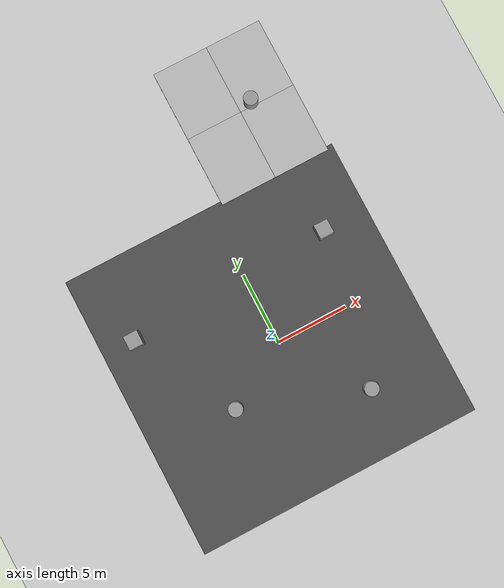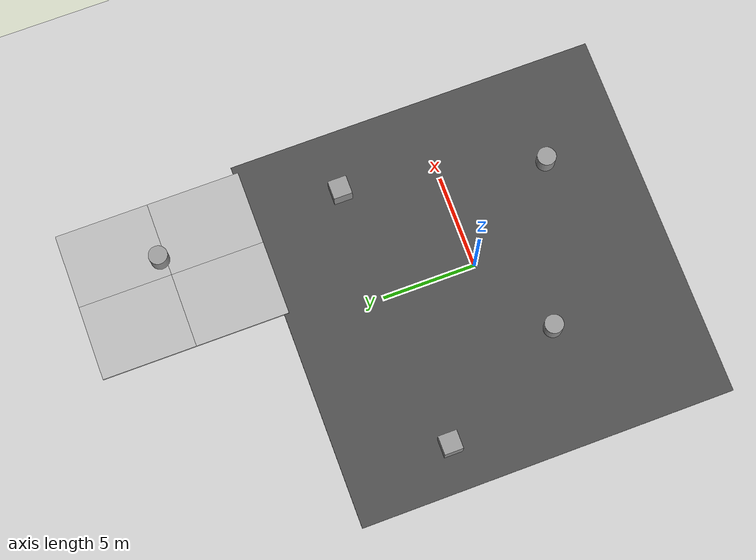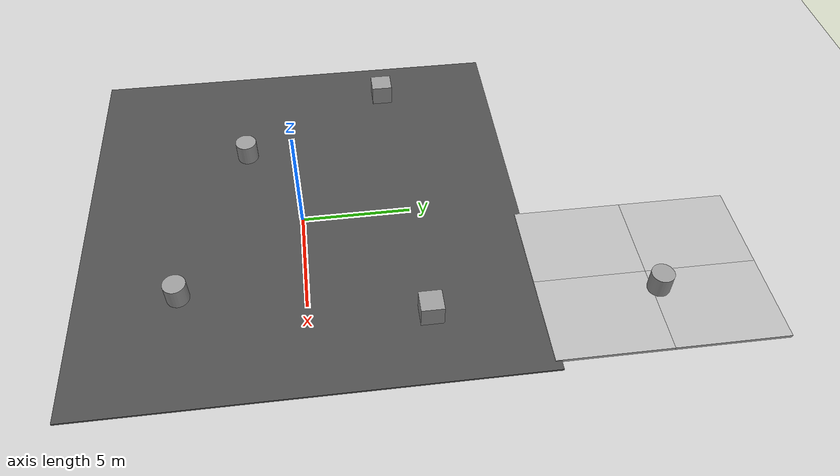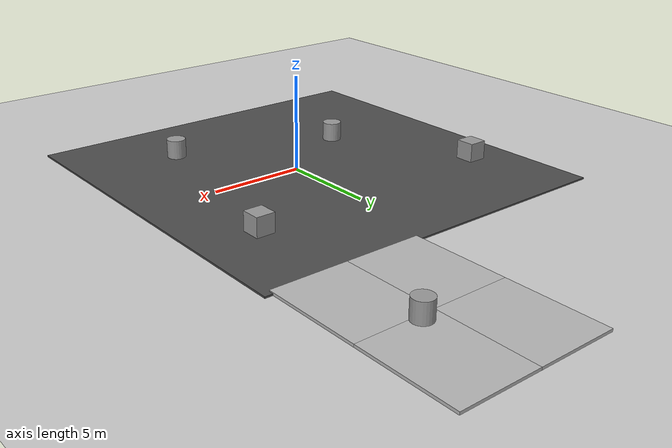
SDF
<sdf version="1.7">
 <world name="default">
  <light name="sun" type="directional">
   <pose>0 0 10 0 -0 0</pose>
   <diffuse>0.8 0.8 0.8 1</diffuse>
   <specular>0.2 0.2 0.2 1</specular>
   <attenuation>
    <range>1000</range>
    <constant>0.9</constant>
    <linear>0.01</linear>
    <quadratic>0.001</quadratic>
   </attenuation>
   <direction>-0.5 0.1 -0.9</direction>
   <spot><inner_angle>0</inner_angle><outer_angle>0</outer_angle><falloff>0</falloff></spot>
  </light>
  <model name="ground_plane">
   <static>1</static>
   <link name="link">
    <collision name="collision">
     <geometry><plane><normal>0 0 1</normal><size>100 100</size></plane></geometry>
     <surface>
      <contact><collide_bitmask>65535</collide_bitmask></contact>
      <friction><ode><mu>100</mu><mu2>50</mu2></ode></friction>
     </surface>
    </collision>
    <visual name="visual">
     <cast_shadows>0</cast_shadows>
     <geometry><plane><normal>0 0 1</normal><size>100 100</size></plane></geometry>
     <material>
      <script><uri>file://media/materials/scripts/gazebo.material</uri><name>Gazebo/Grey</name></script>
     </material>
    </visual>
   </link>
  </model>
  <gravity>0 0 -9.8</gravity>
  <magnetic_field>6e-06 2.3e-05 -4.2e-05</magnetic_field>
  <atmosphere type="adiabatic"/>
  <physics type="ode">
   <max_step_size>0.001</max_step_size>
   <real_time_factor>1</real_time_factor>
   <real_time_update_rate>1000</real_time_update_rate>
  </physics>
  <scene><ambient>0.4 0.4 0.4 1</ambient><background>0.7 0.7 0.7 1</background><shadows>1</shadows></scene>
  <spherical_coordinates>
   <surface_model>EARTH_WGS84</surface_model>
   <latitude_deg>48.760277777778</latitude_deg>
   <longitude_deg>3.9947222222222</longitude_deg>
   <elevation>125</elevation>
   <heading_deg>180</heading_deg>
  </spherical_coordinates>
  <model name="asphalt_plane">
   <static>1</static>
   <link name="link">
    <collision name="collision"><geometry><box><size>20 20 0.1</size></box></geometry></collision>
    <visual name="visual">
     <cast_shadows>0</cast_shadows>
     <geometry><box><size>20 20 0.1</size></box></geometry>
     <material>
      <script>
       <uri>model://asphalt_plane/materials/scripts</uri>
       <uri>model://asphalt_plane/materials/textures</uri>
       <name>vrc/asphalt</name>
      </script>
     </material>
    </visual>
   </link>
   <pose>-0.645794 0.078026 0 0 -0 0</pose>
  </model>
  <model name="mud_box">
   <static>1</static>
   <link name="link">
    <collision name="collision"><geometry><box><size>8 10 0.2</size></box></geometry></collision>
    <visual name="visual_1">
     <pose>-2 2.5 0 0 -0 0</pose>
     <cast_shadows>0</cast_shadows>
     <geometry><box><size>4 5 0.2</size></box></geometry>
     <material>
      <script>
       <uri>model://mud_box/materials/scripts</uri>
       <uri>model://mud_box/materials/textures</uri>
       <name>vrc/mud</name>
      </script>
     </material>
    </visual>
    <visual name="visual_2">
     <pose>2 2.5 0 0 -0 0</pose>
     <cast_shadows>0</cast_shadows>
     <geometry><box><size>4 5 0.2</size></box></geometry>
     <material>
      <script>
       <uri>model://mud_box/materials/scripts</uri>
       <uri>model://mud_box/materials/textures</uri>
       <name>vrc/mud</name>
      </script>
     </material>
    </visual>
    <visual name="visual_3">
     <pose>2 -2.5 0 0 -0 0</pose>
     <cast_shadows>0</cast_shadows>
     <geometry><box><size>4 5 0.2</size></box></geometry>
     <material>
      <script>
       <uri>model://mud_box/materials/scripts</uri>
       <uri>model://mud_box/materials/textures</uri>
       <name>vrc/mud</name>
      </script>
     </material>
    </visual>
    <visual name="visual_4">
     <pose>-2 -2.5 0 0 -0 0</pose>
     <cast_shadows>0</cast_shadows>
     <geometry><box><size>4 5 0.2</size></box></geometry>
     <material>
      <script>
       <uri>model://mud_box/materials/scripts</uri>
       <uri>model://mud_box/materials/textures</uri>
       <name>vrc/mud</name>
      </script>
     </material>
    </visual>
   </link>
   <pose>4.95695 14.8153 0 0 -0 0</pose>
  </model>
  <model name="unit_box">
   <pose>-8.2828 4.52008 0.55 -0 -0 -0</pose>
   <link name="link">
    <inertial>
     <mass>1</mass>
     <inertia>
      <ixx>0.166667</ixx>
      <ixy>0</ixy>
      <ixz>0</ixz>
      <iyy>0.166667</iyy>
      <iyz>0</iyz>
      <izz>0.166667</izz>
     </inertia>
    </inertial>
    <collision name="collision"><geometry><box><size>1 1 1</size></box></geometry></collision>
    <visual name="visual">
     <geometry><box><size>1 1 1</size></box></geometry>
     <material>
      <script><name>Gazebo/Grey</name><uri>file://media/materials/scripts/gazebo.material</uri></script>
     </material>
    </visual>
   </link>
  </model>
  <model name="unit_cylinder">
   <pose>-4.47709 -2.53304 0.550001 -3e-06 -1e-06 3.8e-05</pose>
   <link name="link">
    <inertial>
     <mass>1</mass>
     <inertia><ixx>0.145833</ixx><ixy>0</ixy><ixz>0</ixz><iyy>0.145833</iyy><iyz>0</iyz><izz>0.125</izz></inertia>
    </inertial>
    <collision name="collision">
     <geometry><cylinder><radius>0.5</radius><length>1</length></cylinder></geometry>
    </collision>
    <visual name="visual">
     <geometry><cylinder><radius>0.5</radius><length>1</length></cylinder></geometry>
     <material>
      <script><name>Gazebo/Grey</name><uri>file://media/materials/scripts/gazebo.material</uri></script>
     </material>
    </visual>
   </link>
  </model>
  <model name="unit_cylinder_0">
   <pose>3.93417 -5.46669 0.550003 6e-06 2e-06 2.4e-05</pose>
   <link name="link">
    <inertial>
     <mass>1</mass>
     <inertia><ixx>0.145833</ixx><ixy>0</ixy><ixz>0</ixz><iyy>0.145833</iyy><iyz>0</iyz><izz>0.125</izz></inertia>
    </inertial>
    <collision name="collision">
     <geometry><cylinder><radius>0.5</radius><length>1</length></cylinder></geometry>
    </collision>
    <visual name="visual">
     <geometry><cylinder><radius>0.5</radius><length>1</length></cylinder></geometry>
     <material>
      <script><name>Gazebo/Grey</name><uri>file://media/materials/scripts/gazebo.material</uri></script>
     </material>
    </visual>
   </link>
  </model>
  <model name="unit_cylinder_1">
   <pose>5.89454 15.1029 0.599991 2e-06 1e-06 1.7e-05</pose>
   <link name="link">
    <inertial>
     <mass>1</mass>
     <inertia><ixx>0.145833</ixx><ixy>0</ixy><ixz>0</ixz><iyy>0.145833</iyy><iyz>0</iyz><izz>0.125</izz></inertia>
    </inertial>
    <collision name="collision">
     <geometry><cylinder><radius>0.5</radius><length>1</length></cylinder></geometry>
    </collision>
    <visual name="visual">
     <geometry><cylinder><radius>0.5</radius><length>1</length></cylinder></geometry>
     <material>
      <script><name>Gazebo/Grey</name><uri>file://media/materials/scripts/gazebo.material</uri></script>
     </material>
    </visual>
   </link>
  </model>
  <model name="unit_box_0">
   <pose>6.07515 5.16 0.55 -0 -0 -0</pose>
   <link name="link">
    <inertial>
     <mass>1</mass>
     <inertia>
      <ixx>0.166667</ixx>
      <ixy>0</ixy>
      <ixz>0</ixz>
      <iyy>0.166667</iyy>
      <iyz>0</iyz>
      <izz>0.166667</izz>
     </inertia>
    </inertial>
    <collision name="collision"><geometry><box><size>1 1 1</size></box></geometry></collision>
    <visual name="visual">
     <geometry><box><size>1 1 1</size></box></geometry>
     <material>
      <script><name>Gazebo/Grey</name><uri>file://media/materials/scripts/gazebo.material</uri></script>
     </material>
    </visual>
   </link>
  </model>
 </world>
</sdf>
